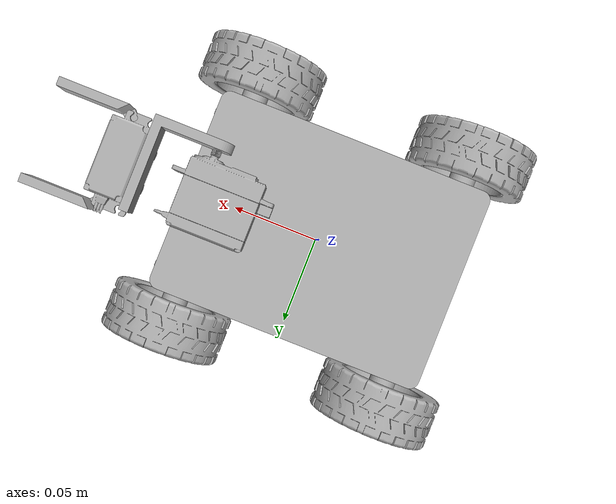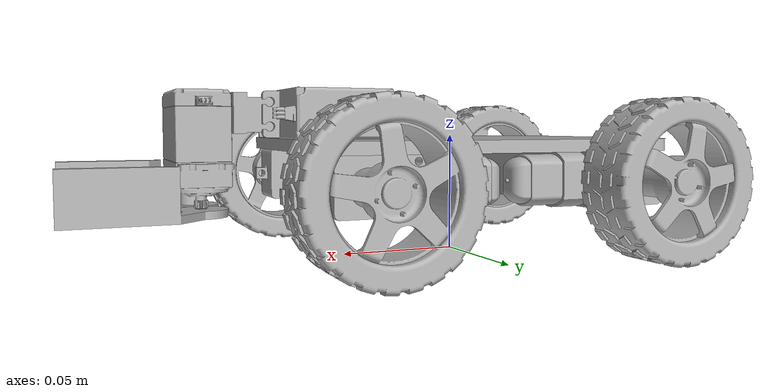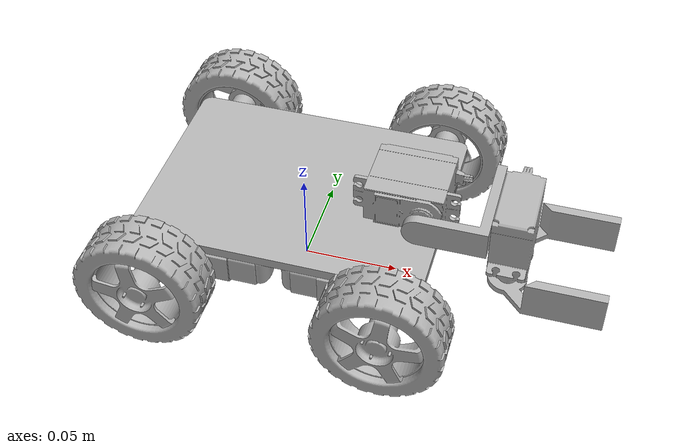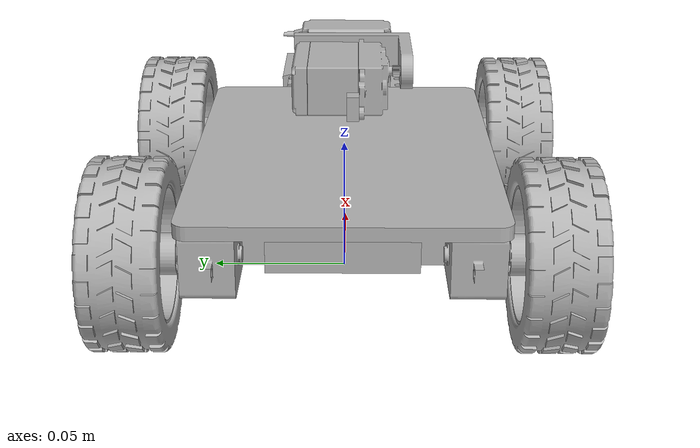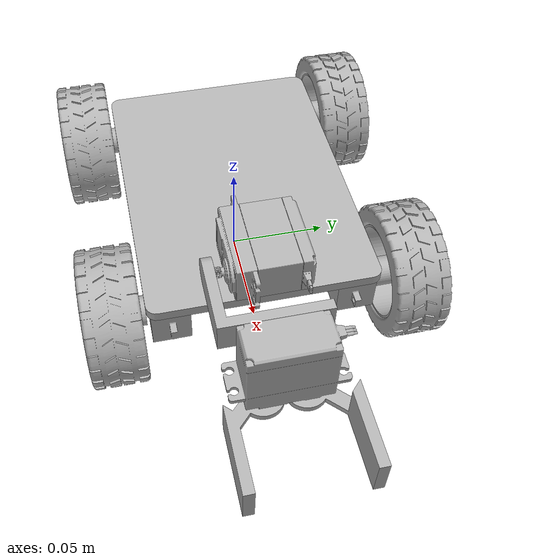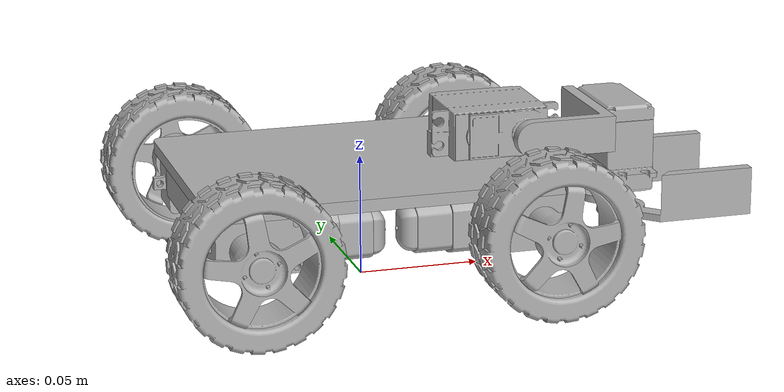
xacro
<?xml version="1.0" ?>
<robot name="irckt" xmlns:xacro="http://www.ros.org/wiki/xacro">

<xacro:include filename="$(find irckt_description)/urdf/materials.xacro" />
<xacro:include filename="$(find irckt_description)/urdf/irckt.trans" />
<xacro:include filename="$(find irckt_description)/urdf/irckt.gazebo" />

<link name="base_link">
  <inertial>
    <origin rpy="0 0 0" xyz="7.742307454656766e-05 9.440899465515515e-07 0.04248471740044428"/>
    <mass value="0.8966874377913377"/>
    <inertia ixx="0.000798" ixy="0.0" ixz="-1e-06" iyy="0.001656" iyz="0.0" izz="0.002362"/>
  </inertial>
  <visual>
    <origin rpy="0 0 0" xyz="0 0 0"/>
    <geometry>
      <mesh filename="package://irckt_description/meshes/base_link.stl" scale="0.001 0.001 0.001"/>
    </geometry>
    <material name="silver"/>
  </visual>
  <collision>
    <origin rpy="0 0 0" xyz="0 0 0"/>
    <geometry>
      <mesh filename="package://irckt_description/meshes/base_link.stl" scale="0.001 0.001 0.001"/>
    </geometry>
  </collision>
</link>

<link name="motor_gearbox_fr_1">
  <inertial>
    <origin rpy="0 0 0" xyz="0.013408875242231028 -0.009213108094018388 0.01125049043677288"/>
    <mass value="0.036388730782146946"/>
    <inertia ixx="4e-06" ixy="-0.0" ixz="0.0" iyy="1e-05" iyz="-0.0" izz="9e-06"/>
  </inertial>
  <visual>
    <origin rpy="0 0 0" xyz="-0.034984 0.03499 -0.021254"/>
    <geometry>
      <mesh filename="package://irckt_description/meshes/motor_gearbox_fr_1.stl" scale="0.001 0.001 0.001"/>
    </geometry>
    <material name="silver"/>
  </visual>
  <collision>
    <origin rpy="0 0 0" xyz="-0.034984 0.03499 -0.021254"/>
    <geometry>
      <mesh filename="package://irckt_description/meshes/motor_gearbox_fr_1.stl" scale="0.001 0.001 0.001"/>
    </geometry>
  </collision>
</link>

<link name="motor_fr_1">
  <inertial>
    <origin rpy="0 0 0" xyz="-0.0069939259120807805 -2.220446049250313e-16 4.904367727834313e-07"/>
    <mass value="0.033345486553475974"/>
    <inertia ixx="2e-06" ixy="0.0" ixz="0.0" iyy="2e-06" iyz="0.0" izz="1e-06"/>
  </inertial>
  <visual>
    <origin rpy="0 0 0" xyz="-0.022984 0.04421 -0.032504"/>
    <geometry>
      <mesh filename="package://irckt_description/meshes/motor_fr_1.stl" scale="0.001 0.001 0.001"/>
    </geometry>
    <material name="silver"/>
  </visual>
  <collision>
    <origin rpy="0 0 0" xyz="-0.022984 0.04421 -0.032504"/>
    <geometry>
      <mesh filename="package://irckt_description/meshes/motor_fr_1.stl" scale="0.001 0.001 0.001"/>
    </geometry>
  </collision>
</link>

<link name="motor_cap_fr_1">
  <inertial>
    <origin rpy="0 0 0" xyz="-0.0025818912734563923 5.692937052950708e-07 4.385274195162214e-08"/>
    <mass value="0.009229497133387199"/>
    <inertia ixx="0.0" ixy="0.0" ixz="-0.0" iyy="0.0" iyz="0.0" izz="0.0"/>
  </inertial>
  <visual>
    <origin rpy="0 0 0" xyz="-0.008984 0.04421 -0.032504"/>
    <geometry>
      <mesh filename="package://irckt_description/meshes/motor_cap_fr_1.stl" scale="0.001 0.001 0.001"/>
    </geometry>
    <material name="silver"/>
  </visual>
  <collision>
    <origin rpy="0 0 0" xyz="-0.008984 0.04421 -0.032504"/>
    <geometry>
      <mesh filename="package://irckt_description/meshes/motor_cap_fr_1.stl" scale="0.001 0.001 0.001"/>
    </geometry>
  </collision>
</link>

<link name="motor_tip_fr_1">
  <inertial>
    <origin rpy="0 0 0" xyz="-0.00044726959513325835 -3.122502256758253e-16 4.904369513350493e-07"/>
    <mass value="1.2182982002202539e-05"/>
    <inertia ixx="0.0" ixy="0.0" ixz="0.0" iyy="0.0" iyz="0.0" izz="0.0"/>
  </inertial>
  <visual>
    <origin rpy="0 0 0" xyz="-0.002984 0.04421 -0.032504"/>
    <geometry>
      <mesh filename="package://irckt_description/meshes/motor_tip_fr_1.stl" scale="0.001 0.001 0.001"/>
    </geometry>
    <material name="silver"/>
  </visual>
  <collision>
    <origin rpy="0 0 0" xyz="-0.002984 0.04421 -0.032504"/>
    <geometry>
      <mesh filename="package://irckt_description/meshes/motor_tip_fr_1.stl" scale="0.001 0.001 0.001"/>
    </geometry>
  </collision>
</link>

<link name="motor_shaft_fr_1">
  <inertial>
    <origin rpy="0 0 0" xyz="1.5345284029577577e-08 -0.01242112603739657 4.904363560404024e-07"/>
    <mass value="0.005108425148768522"/>
    <inertia ixx="0.0" ixy="-0.0" ixz="0.0" iyy="0.0" iyz="-0.0" izz="0.0"/>
  </inertial>
  <visual>
    <origin rpy="0 0 0" xyz="-0.059984 0.03499 -0.032504"/>
    <geometry>
      <mesh filename="package://irckt_description/meshes/motor_shaft_fr_1.stl" scale="0.001 0.001 0.001"/>
    </geometry>
    <material name="silver"/>
  </visual>
  <collision>
    <origin rpy="0 0 0" xyz="-0.059984 0.03499 -0.032504"/>
    <geometry>
      <mesh filename="package://irckt_description/meshes/motor_shaft_fr_1.stl" scale="0.001 0.001 0.001"/>
    </geometry>
  </collision>
</link>

<link name="wheel_rim_fr_1">
  <inertial>
    <origin rpy="0 0 0" xyz="-5.180015389613657e-07 -0.01723523233728609 1.5189048272259975e-06"/>
    <mass value="0.05760100700095268"/>
    <inertia ixx="1.1e-05" ixy="-0.0" ixz="0.0" iyy="1.5e-05" iyz="0.0" izz="1.1e-05"/>
  </inertial>
  <visual>
    <origin rpy="0 0 0" xyz="-0.059984 0.05495 -0.032504"/>
    <geometry>
      <mesh filename="package://irckt_description/meshes/wheel_rim_fr_1.stl" scale="0.001 0.001 0.001"/>
    </geometry>
    <material name="silver"/>
  </visual>
  <collision>
    <origin rpy="0 0 0" xyz="-0.059984 0.05495 -0.032504"/>
    <geometry>
      <mesh filename="package://irckt_description/meshes/wheel_rim_fr_1.stl" scale="0.001 0.001 0.001"/>
    </geometry>
  </collision>
</link>

<link name="wheel_tyre_fr_1">
  <inertial>
    <origin rpy="0 0 0" xyz="9.012012316955698e-09 -0.011497105646493512 4.780255148592594e-07"/>
    <mass value="0.19800736883970116"/>
    <inertia ixx="9.2e-05" ixy="0.0" ixz="-0.0" iyy="0.000156" iyz="0.0" izz="9.2e-05"/>
  </inertial>
  <visual>
    <origin rpy="0 0 0" xyz="-0.059984 0.05865 -0.032504"/>
    <geometry>
      <mesh filename="package://irckt_description/meshes/wheel_tyre_fr_1.stl" scale="0.001 0.001 0.001"/>
    </geometry>
    <material name="silver"/>
  </visual>
  <collision>
    <origin rpy="0 0 0" xyz="-0.059984 0.05865 -0.032504"/>
    <geometry>
      <mesh filename="package://irckt_description/meshes/wheel_tyre_fr_1.stl" scale="0.001 0.001 0.001"/>
    </geometry>
  </collision>
</link>

<link name="motor_gearbox_br_1">
  <inertial>
    <origin rpy="0 0 0" xyz="-0.013408844551836017 -0.009213108094018374 0.011250490436772603"/>
    <mass value="0.036388730782146925"/>
    <inertia ixx="4e-06" ixy="0.0" ixz="-0.0" iyy="1e-05" iyz="-0.0" izz="9e-06"/>
  </inertial>
  <visual>
    <origin rpy="0 0 0" xyz="0.035016 0.03499 -0.021254"/>
    <geometry>
      <mesh filename="package://irckt_description/meshes/motor_gearbox_br_1.stl" scale="0.001 0.001 0.001"/>
    </geometry>
    <material name="silver"/>
  </visual>
  <collision>
    <origin rpy="0 0 0" xyz="0.035016 0.03499 -0.021254"/>
    <geometry>
      <mesh filename="package://irckt_description/meshes/motor_gearbox_br_1.stl" scale="0.001 0.001 0.001"/>
    </geometry>
  </collision>
</link>

<link name="motor_br_1">
  <inertial>
    <origin rpy="0 0 0" xyz="0.006993956602475752 -3.122502256758253e-16 4.904367715968805e-07"/>
    <mass value="0.03334548655347591"/>
    <inertia ixx="2e-06" ixy="0.0" ixz="-0.0" iyy="2e-06" iyz="-0.0" izz="1e-06"/>
  </inertial>
  <visual>
    <origin rpy="0 0 0" xyz="0.023016 0.04421 -0.032504"/>
    <geometry>
      <mesh filename="package://irckt_description/meshes/motor_br_1.stl" scale="0.001 0.001 0.001"/>
    </geometry>
    <material name="silver"/>
  </visual>
  <collision>
    <origin rpy="0 0 0" xyz="0.023016 0.04421 -0.032504"/>
    <geometry>
      <mesh filename="package://irckt_description/meshes/motor_br_1.stl" scale="0.001 0.001 0.001"/>
    </geometry>
  </collision>
</link>

<link name="motor_cap_br_1">
  <inertial>
    <origin rpy="0 0 0" xyz="0.0025819232527109917 6.06989667806257e-07 2.1055439135275744e-08"/>
    <mass value="0.009229413055020544"/>
    <inertia ixx="0.0" ixy="-0.0" ixz="0.0" iyy="0.0" iyz="0.0" izz="0.0"/>
  </inertial>
  <visual>
    <origin rpy="0 0 0" xyz="0.009016 0.04421 -0.032504"/>
    <geometry>
      <mesh filename="package://irckt_description/meshes/motor_cap_br_1.stl" scale="0.001 0.001 0.001"/>
    </geometry>
    <material name="silver"/>
  </visual>
  <collision>
    <origin rpy="0 0 0" xyz="0.009016 0.04421 -0.032504"/>
    <geometry>
      <mesh filename="package://irckt_description/meshes/motor_cap_br_1.stl" scale="0.001 0.001 0.001"/>
    </geometry>
  </collision>
</link>

<link name="motor_tip_br_1">
  <inertial>
    <origin rpy="0 0 0" xyz="0.00044730028552824415 -3.608224830031759e-16 4.904367692515343e-07"/>
    <mass value="1.2182982002203211e-05"/>
    <inertia ixx="0.0" ixy="0.0" ixz="0.0" iyy="0.0" iyz="-0.0" izz="0.0"/>
  </inertial>
  <visual>
    <origin rpy="0 0 0" xyz="0.003016 0.04421 -0.032504"/>
    <geometry>
      <mesh filename="package://irckt_description/meshes/motor_tip_br_1.stl" scale="0.001 0.001 0.001"/>
    </geometry>
    <material name="silver"/>
  </visual>
  <collision>
    <origin rpy="0 0 0" xyz="0.003016 0.04421 -0.032504"/>
    <geometry>
      <mesh filename="package://irckt_description/meshes/motor_tip_br_1.stl" scale="0.001 0.001 0.001"/>
    </geometry>
  </collision>
</link>

<link name="motor_shaft_br_1">
  <inertial>
    <origin rpy="0 0 0" xyz="1.534511029355201e-08 -0.012421126037396674 4.904363562763248e-07"/>
    <mass value="0.00510842514876852"/>
    <inertia ixx="0.0" ixy="0.0" ixz="-0.0" iyy="0.0" iyz="-0.0" izz="0.0"/>
  </inertial>
  <visual>
    <origin rpy="0 0 0" xyz="0.060016 0.03499 -0.032504"/>
    <geometry>
      <mesh filename="package://irckt_description/meshes/motor_shaft_br_1.stl" scale="0.001 0.001 0.001"/>
    </geometry>
    <material name="silver"/>
  </visual>
  <collision>
    <origin rpy="0 0 0" xyz="0.060016 0.03499 -0.032504"/>
    <geometry>
      <mesh filename="package://irckt_description/meshes/motor_shaft_br_1.stl" scale="0.001 0.001 0.001"/>
    </geometry>
  </collision>
</link>

<link name="wheel_rim_br_1">
  <inertial>
    <origin rpy="0 0 0" xyz="5.431399148145277e-07 -0.017235229735062307 1.5172354682069233e-06"/>
    <mass value="0.05760099381812663"/>
    <inertia ixx="1.1e-05" ixy="0.0" ixz="-0.0" iyy="1.5e-05" iyz="0.0" izz="1.1e-05"/>
  </inertial>
  <visual>
    <origin rpy="0 0 0" xyz="0.060016 0.05495 -0.032504"/>
    <geometry>
      <mesh filename="package://irckt_description/meshes/wheel_rim_br_1.stl" scale="0.001 0.001 0.001"/>
    </geometry>
    <material name="silver"/>
  </visual>
  <collision>
    <origin rpy="0 0 0" xyz="0.060016 0.05495 -0.032504"/>
    <geometry>
      <mesh filename="package://irckt_description/meshes/wheel_rim_br_1.stl" scale="0.001 0.001 0.001"/>
    </geometry>
  </collision>
</link>

<link name="wheel_tyre_br_1">
  <inertial>
    <origin rpy="0 0 0" xyz="2.166498389716276e-08 -0.011497105494106825 4.780324033629157e-07"/>
    <mass value="0.19800720613745246"/>
    <inertia ixx="9.2e-05" ixy="-0.0" ixz="0.0" iyy="0.000156" iyz="0.0" izz="9.2e-05"/>
  </inertial>
  <visual>
    <origin rpy="0 0 0" xyz="0.060016 0.05865 -0.032504"/>
    <geometry>
      <mesh filename="package://irckt_description/meshes/wheel_tyre_br_1.stl" scale="0.001 0.001 0.001"/>
    </geometry>
    <material name="silver"/>
  </visual>
  <collision>
    <origin rpy="0 0 0" xyz="0.060016 0.05865 -0.032504"/>
    <geometry>
      <mesh filename="package://irckt_description/meshes/wheel_tyre_br_1.stl" scale="0.001 0.001 0.001"/>
    </geometry>
  </collision>
</link>

<link name="motor_gearbox_bl_1">
  <inertial>
    <origin rpy="0 0 0" xyz="-0.013408844551836087 0.009213108094018041 0.011250490436772894"/>
    <mass value="0.03638873078214621"/>
    <inertia ixx="4e-06" ixy="-0.0" ixz="-0.0" iyy="1e-05" iyz="0.0" izz="9e-06"/>
  </inertial>
  <visual>
    <origin rpy="0 0 0" xyz="0.035016 -0.03501 -0.021254"/>
    <geometry>
      <mesh filename="package://irckt_description/meshes/motor_gearbox_bl_1.stl" scale="0.001 0.001 0.001"/>
    </geometry>
    <material name="silver"/>
  </visual>
  <collision>
    <origin rpy="0 0 0" xyz="0.035016 -0.03501 -0.021254"/>
    <geometry>
      <mesh filename="package://irckt_description/meshes/motor_gearbox_bl_1.stl" scale="0.001 0.001 0.001"/>
    </geometry>
  </collision>
</link>

<link name="motor_bl_1">
  <inertial>
    <origin rpy="0 0 0" xyz="0.006993956602475749 -1.3877787807814457e-17 4.904367716801472e-07"/>
    <mass value="0.03334548655347597"/>
    <inertia ixx="2e-06" ixy="-0.0" ixz="0.0" iyy="2e-06" iyz="0.0" izz="1e-06"/>
  </inertial>
  <visual>
    <origin rpy="0 0 0" xyz="0.023016 -0.04423 -0.032504"/>
    <geometry>
      <mesh filename="package://irckt_description/meshes/motor_bl_1.stl" scale="0.001 0.001 0.001"/>
    </geometry>
    <material name="silver"/>
  </visual>
  <collision>
    <origin rpy="0 0 0" xyz="0.023016 -0.04423 -0.032504"/>
    <geometry>
      <mesh filename="package://irckt_description/meshes/motor_bl_1.stl" scale="0.001 0.001 0.001"/>
    </geometry>
  </collision>
</link>

<link name="motor_cap_bl_1">
  <inertial>
    <origin rpy="0 0 0" xyz="0.0025819219638513738 -5.692937056489544e-07 4.385274181978316e-08"/>
    <mass value="0.009229497133387197"/>
    <inertia ixx="0.0" ixy="0.0" ixz="0.0" iyy="0.0" iyz="-0.0" izz="0.0"/>
  </inertial>
  <visual>
    <origin rpy="0 0 0" xyz="0.009016 -0.04423 -0.032504"/>
    <geometry>
      <mesh filename="package://irckt_description/meshes/motor_cap_bl_1.stl" scale="0.001 0.001 0.001"/>
    </geometry>
    <material name="silver"/>
  </visual>
  <collision>
    <origin rpy="0 0 0" xyz="0.009016 -0.04423 -0.032504"/>
    <geometry>
      <mesh filename="package://irckt_description/meshes/motor_cap_bl_1.stl" scale="0.001 0.001 0.001"/>
    </geometry>
  </collision>
</link>

<link name="motor_tip_bl_1">
  <inertial>
    <origin rpy="0 0 0" xyz="0.00044730028552824154 1.3877787807814457e-17 4.904367693348011e-07"/>
    <mass value="1.2182982002203225e-05"/>
    <inertia ixx="0.0" ixy="-0.0" ixz="0.0" iyy="0.0" iyz="0.0" izz="0.0"/>
  </inertial>
  <visual>
    <origin rpy="0 0 0" xyz="0.003016 -0.04423 -0.032504"/>
    <geometry>
      <mesh filename="package://irckt_description/meshes/motor_tip_bl_1.stl" scale="0.001 0.001 0.001"/>
    </geometry>
    <material name="silver"/>
  </visual>
  <collision>
    <origin rpy="0 0 0" xyz="0.003016 -0.04423 -0.032504"/>
    <geometry>
      <mesh filename="package://irckt_description/meshes/motor_tip_bl_1.stl" scale="0.001 0.001 0.001"/>
    </geometry>
  </collision>
</link>

<link name="motor_shaft_bl_1">
  <inertial>
    <origin rpy="0 0 0" xyz="1.5345110855602417e-08 0.012421126037396306 4.904363559710134e-07"/>
    <mass value="0.00510842514876852"/>
    <inertia ixx="0.0" ixy="-0.0" ixz="-0.0" iyy="0.0" iyz="0.0" izz="0.0"/>
  </inertial>
  <visual>
    <origin rpy="0 0 0" xyz="0.060016 -0.03501 -0.032504"/>
    <geometry>
      <mesh filename="package://irckt_description/meshes/motor_shaft_bl_1.stl" scale="0.001 0.001 0.001"/>
    </geometry>
    <material name="silver"/>
  </visual>
  <collision>
    <origin rpy="0 0 0" xyz="0.060016 -0.03501 -0.032504"/>
    <geometry>
      <mesh filename="package://irckt_description/meshes/motor_shaft_bl_1.stl" scale="0.001 0.001 0.001"/>
    </geometry>
  </collision>
</link>

<link name="wheel_rim_bl_1">
  <inertial>
    <origin rpy="0 0 0" xyz="5.58495662654479e-07 0.017235221215434922 1.5285107425044853e-06"/>
    <mass value="0.057601062843890743"/>
    <inertia ixx="1.1e-05" ixy="-0.0" ixz="-0.0" iyy="1.5e-05" iyz="-0.0" izz="1.1e-05"/>
  </inertial>
  <visual>
    <origin rpy="0 0 0" xyz="0.060016 -0.05497 -0.032504"/>
    <geometry>
      <mesh filename="package://irckt_description/meshes/wheel_rim_bl_1.stl" scale="0.001 0.001 0.001"/>
    </geometry>
    <material name="silver"/>
  </visual>
  <collision>
    <origin rpy="0 0 0" xyz="0.060016 -0.05497 -0.032504"/>
    <geometry>
      <mesh filename="package://irckt_description/meshes/wheel_rim_bl_1.stl" scale="0.001 0.001 0.001"/>
    </geometry>
  </collision>
</link>

<link name="wheel_tyre_bl_1">
  <inertial>
    <origin rpy="0 0 0" xyz="1.8141209694177984e-08 0.011497105646392433 4.89053258334593e-07"/>
    <mass value="0.19800735518744308"/>
    <inertia ixx="9.2e-05" ixy="0.0" ixz="0.0" iyy="0.000156" iyz="-0.0" izz="9.2e-05"/>
  </inertial>
  <visual>
    <origin rpy="0 0 0" xyz="0.060016 -0.05867 -0.032504"/>
    <geometry>
      <mesh filename="package://irckt_description/meshes/wheel_tyre_bl_1.stl" scale="0.001 0.001 0.001"/>
    </geometry>
    <material name="silver"/>
  </visual>
  <collision>
    <origin rpy="0 0 0" xyz="0.060016 -0.05867 -0.032504"/>
    <geometry>
      <mesh filename="package://irckt_description/meshes/wheel_tyre_bl_1.stl" scale="0.001 0.001 0.001"/>
    </geometry>
  </collision>
</link>

<link name="motor_gearbox_fl_1">
  <inertial>
    <origin rpy="0 0 0" xyz="0.013408875242230923 0.009213108094018048 0.011250490436772908"/>
    <mass value="0.03638873078214622"/>
    <inertia ixx="4e-06" ixy="0.0" ixz="0.0" iyy="1e-05" iyz="0.0" izz="9e-06"/>
  </inertial>
  <visual>
    <origin rpy="0 0 0" xyz="-0.034984 -0.03501 -0.021254"/>
    <geometry>
      <mesh filename="package://irckt_description/meshes/motor_gearbox_fl_1.stl" scale="0.001 0.001 0.001"/>
    </geometry>
    <material name="silver"/>
  </visual>
  <collision>
    <origin rpy="0 0 0" xyz="-0.034984 -0.03501 -0.021254"/>
    <geometry>
      <mesh filename="package://irckt_description/meshes/motor_gearbox_fl_1.stl" scale="0.001 0.001 0.001"/>
    </geometry>
  </collision>
</link>

<link name="motor_fl_1">
  <inertial>
    <origin rpy="0 0 0" xyz="-0.006993925912080784 -7.632783294297951e-17 4.904367726377146e-07"/>
    <mass value="0.03334548655347598"/>
    <inertia ixx="2e-06" ixy="0.0" ixz="0.0" iyy="2e-06" iyz="0.0" izz="1e-06"/>
  </inertial>
  <visual>
    <origin rpy="0 0 0" xyz="-0.022984 -0.04423 -0.032504"/>
    <geometry>
      <mesh filename="package://irckt_description/meshes/motor_fl_1.stl" scale="0.001 0.001 0.001"/>
    </geometry>
    <material name="silver"/>
  </visual>
  <collision>
    <origin rpy="0 0 0" xyz="-0.022984 -0.04423 -0.032504"/>
    <geometry>
      <mesh filename="package://irckt_description/meshes/motor_fl_1.stl" scale="0.001 0.001 0.001"/>
    </geometry>
  </collision>
</link>

<link name="motor_cap_fl_1">
  <inertial>
    <origin rpy="0 0 0" xyz="-0.0025818925623160103 -6.069896681601405e-07 2.1055439211603577e-08"/>
    <mass value="0.009229413055020544"/>
    <inertia ixx="0.0" ixy="-0.0" ixz="-0.0" iyy="0.0" iyz="-0.0" izz="0.0"/>
  </inertial>
  <visual>
    <origin rpy="0 0 0" xyz="-0.008984 -0.04423 -0.032504"/>
    <geometry>
      <mesh filename="package://irckt_description/meshes/motor_cap_fl_1.stl" scale="0.001 0.001 0.001"/>
    </geometry>
    <material name="silver"/>
  </visual>
  <collision>
    <origin rpy="0 0 0" xyz="-0.008984 -0.04423 -0.032504"/>
    <geometry>
      <mesh filename="package://irckt_description/meshes/motor_cap_fl_1.stl" scale="0.001 0.001 0.001"/>
    </geometry>
  </collision>
</link>

<link name="motor_tip_fl_1">
  <inertial>
    <origin rpy="0 0 0" xyz="-0.0004472695951332601 -4.163336342344337e-17 4.904369511823936e-07"/>
    <mass value="1.2182982002202539e-05"/>
    <inertia ixx="0.0" ixy="-0.0" ixz="0.0" iyy="0.0" iyz="-0.0" izz="0.0"/>
  </inertial>
  <visual>
    <origin rpy="0 0 0" xyz="-0.002984 -0.04423 -0.032504"/>
    <geometry>
      <mesh filename="package://irckt_description/meshes/motor_tip_fl_1.stl" scale="0.001 0.001 0.001"/>
    </geometry>
    <material name="silver"/>
  </visual>
  <collision>
    <origin rpy="0 0 0" xyz="-0.002984 -0.04423 -0.032504"/>
    <geometry>
      <mesh filename="package://irckt_description/meshes/motor_tip_fl_1.stl" scale="0.001 0.001 0.001"/>
    </geometry>
  </collision>
</link>

<link name="motor_shaft_fl_1">
  <inertial>
    <origin rpy="0 0 0" xyz="1.5345284022638683e-08 0.012421126037396216 4.904363558808078e-07"/>
    <mass value="0.005108425148768522"/>
    <inertia ixx="0.0" ixy="0.0" ixz="0.0" iyy="0.0" iyz="0.0" izz="0.0"/>
  </inertial>
  <visual>
    <origin rpy="0 0 0" xyz="-0.059984 -0.03501 -0.032504"/>
    <geometry>
      <mesh filename="package://irckt_description/meshes/motor_shaft_fl_1.stl" scale="0.001 0.001 0.001"/>
    </geometry>
    <material name="silver"/>
  </visual>
  <collision>
    <origin rpy="0 0 0" xyz="-0.059984 -0.03501 -0.032504"/>
    <geometry>
      <mesh filename="package://irckt_description/meshes/motor_shaft_fl_1.stl" scale="0.001 0.001 0.001"/>
    </geometry>
  </collision>
</link>

<link name="wheel_rim_fl_1">
  <inertial>
    <origin rpy="0 0 0" xyz="-5.154830561987511e-07 0.017235253379376612 1.5308276021669398e-06"/>
    <mass value="0.05760056271807261"/>
    <inertia ixx="1.1e-05" ixy="0.0" ixz="0.0" iyy="1.5e-05" iyz="-0.0" izz="1.1e-05"/>
  </inertial>
  <visual>
    <origin rpy="0 0 0" xyz="-0.059984 -0.05497 -0.032504"/>
    <geometry>
      <mesh filename="package://irckt_description/meshes/wheel_rim_fl_1.stl" scale="0.001 0.001 0.001"/>
    </geometry>
    <material name="silver"/>
  </visual>
  <collision>
    <origin rpy="0 0 0" xyz="-0.059984 -0.05497 -0.032504"/>
    <geometry>
      <mesh filename="package://irckt_description/meshes/wheel_rim_fl_1.stl" scale="0.001 0.001 0.001"/>
    </geometry>
  </collision>
</link>

<link name="wheel_tyre_fl_1">
  <inertial>
    <origin rpy="0 0 0" xyz="1.2549497115099673e-08 0.011497105495240842 4.890534189699869e-07"/>
    <mass value="0.19800735756395393"/>
    <inertia ixx="9.2e-05" ixy="-0.0" ixz="-0.0" iyy="0.000156" iyz="-0.0" izz="9.2e-05"/>
  </inertial>
  <visual>
    <origin rpy="0 0 0" xyz="-0.059984 -0.05867 -0.032504"/>
    <geometry>
      <mesh filename="package://irckt_description/meshes/wheel_tyre_fl_1.stl" scale="0.001 0.001 0.001"/>
    </geometry>
    <material name="silver"/>
  </visual>
  <collision>
    <origin rpy="0 0 0" xyz="-0.059984 -0.05867 -0.032504"/>
    <geometry>
      <mesh filename="package://irckt_description/meshes/wheel_tyre_fl_1.stl" scale="0.001 0.001 0.001"/>
    </geometry>
  </collision>
</link>

<link name="dead_weight_1">
  <inertial>
    <origin rpy="0 0 0" xyz="0.010000015345197538 -1.1469164919002128e-16 -0.005499509563227492"/>
    <mass value="0.08635000000000023"/>
    <inertia ixx="1.9e-05" ixy="-0.0" ixz="-0.0" iyy="4e-06" iyz="0.0" izz="2.1e-05"/>
  </inertial>
  <visual>
    <origin rpy="0 0 0" xyz="0.075016 -1e-05 -0.043754"/>
    <geometry>
      <mesh filename="package://irckt_description/meshes/dead_weight_1.stl" scale="0.001 0.001 0.001"/>
    </geometry>
    <material name="silver"/>
  </visual>
  <collision>
    <origin rpy="0 0 0" xyz="0.075016 -1e-05 -0.043754"/>
    <geometry>
      <mesh filename="package://irckt_description/meshes/dead_weight_1.stl" scale="0.001 0.001 0.001"/>
    </geometry>
  </collision>
</link>

<link name="lift_servo_1">
  <inertial>
    <origin rpy="0 0 0" xyz="0.027167595742850655 0.00788813137728362 -4.864205094962104e-08"/>
    <mass value="0.03255290139063931"/>
    <inertia ixx="5e-06" ixy="0.0" ixz="0.0" iyy="6e-06" iyz="-0.0" izz="8e-06"/>
  </inertial>
  <visual>
    <origin rpy="0 0 0" xyz="-0.028484 0.005578 -0.058754"/>
    <geometry>
      <mesh filename="package://irckt_description/meshes/lift_servo_1.stl" scale="0.001 0.001 0.001"/>
    </geometry>
    <material name="silver"/>
  </visual>
  <collision>
    <origin rpy="0 0 0" xyz="-0.028484 0.005578 -0.058754"/>
    <geometry>
      <mesh filename="package://irckt_description/meshes/lift_servo_1.stl" scale="0.001 0.001 0.001"/>
    </geometry>
  </collision>
</link>

<link name="lift_link_1">
  <inertial>
    <origin rpy="0 0 0" xyz="0.023727499321322204 0.011149088854606767 4.909438067191019e-07"/>
    <mass value="0.006882014935206369"/>
    <inertia ixx="2e-06" ixy="-1e-06" ixz="-0.0" iyy="1e-06" iyz="-0.0" izz="3e-06"/>
  </inertial>
  <visual>
    <origin rpy="0 0 0" xyz="-0.065484 0.023078 -0.058754"/>
    <geometry>
      <mesh filename="package://irckt_description/meshes/lift_link_1.stl" scale="0.001 0.001 0.001"/>
    </geometry>
    <material name="silver"/>
  </visual>
  <collision>
    <origin rpy="0 0 0" xyz="-0.065484 0.023078 -0.058754"/>
    <geometry>
      <mesh filename="package://irckt_description/meshes/lift_link_1.stl" scale="0.001 0.001 0.001"/>
    </geometry>
  </collision>
</link>

<link name="gripper_servo_1">
  <inertial>
    <origin rpy="0 0 0" xyz="0.009999486404243751 8.181611108925372e-06 -0.018336714602036036"/>
    <mass value="0.03307185450478769"/>
    <inertia ixx="9e-06" ixy="0.0" ixz="-0.0" iyy="5e-06" iyz="-0.0" izz="6e-06"/>
  </inertial>
  <visual>
    <origin rpy="0 0 0" xyz="-0.099984 -1e-05 -0.066254"/>
    <geometry>
      <mesh filename="package://irckt_description/meshes/gripper_servo_1.stl" scale="0.001 0.001 0.001"/>
    </geometry>
    <material name="silver"/>
  </visual>
  <collision>
    <origin rpy="0 0 0" xyz="-0.099984 -1e-05 -0.066254"/>
    <geometry>
      <mesh filename="package://irckt_description/meshes/gripper_servo_1.stl" scale="0.001 0.001 0.001"/>
    </geometry>
  </collision>
</link>

<link name="finger_left_1">
  <inertial>
    <origin rpy="0 0 0" xyz="0.02407545811321196 0.013991086151714785 0.004939581363089994"/>
    <mass value="0.005246648290910586"/>
    <inertia ixx="0.0" ixy="-0.0" ixz="-0.0" iyy="2e-06" iyz="-0.0" izz="2e-06"/>
  </inertial>
  <visual>
    <origin rpy="0 0 0" xyz="-0.109984 -0.01001 -0.022879"/>
    <geometry>
      <mesh filename="package://irckt_description/meshes/finger_left_1.stl" scale="0.001 0.001 0.001"/>
    </geometry>
    <material name="silver"/>
  </visual>
  <collision>
    <origin rpy="0 0 0" xyz="-0.109984 -0.01001 -0.022879"/>
    <geometry>
      <mesh filename="package://irckt_description/meshes/finger_left_1.stl" scale="0.001 0.001 0.001"/>
    </geometry>
  </collision>
</link>

<link name="finger_right_1">
  <inertial>
    <origin rpy="0 0 0" xyz="0.02407545811321196 -0.013991084584887617 0.004939580385101037"/>
    <mass value="0.005246648290910586"/>
    <inertia ixx="0.0" ixy="0.0" ixz="-0.0" iyy="2e-06" iyz="0.0" izz="2e-06"/>
  </inertial>
  <visual>
    <origin rpy="0 0 0" xyz="-0.109984 0.00999 -0.022879"/>
    <geometry>
      <mesh filename="package://irckt_description/meshes/finger_right_1.stl" scale="0.001 0.001 0.001"/>
    </geometry>
    <material name="silver"/>
  </visual>
  <collision>
    <origin rpy="0 0 0" xyz="-0.109984 0.00999 -0.022879"/>
    <geometry>
      <mesh filename="package://irckt_description/meshes/finger_right_1.stl" scale="0.001 0.001 0.001"/>
    </geometry>
  </collision>
</link>

<joint name="Rigid1" type="fixed">
  <origin rpy="0 0 0" xyz="0.034984 -0.03499 0.021254"/>
  <parent link="base_link"/>
  <child link="motor_gearbox_fr_1"/>
</joint>

<joint name="Rigid2" type="fixed">
  <origin rpy="0 0 0" xyz="-0.012 -0.00922 0.01125"/>
  <parent link="motor_gearbox_fr_1"/>
  <child link="motor_fr_1"/>
</joint>

<joint name="Rigid3" type="fixed">
  <origin rpy="0 0 0" xyz="-0.014 0.0 0.0"/>
  <parent link="motor_fr_1"/>
  <child link="motor_cap_fr_1"/>
</joint>

<joint name="Rigid4" type="fixed">
  <origin rpy="0 0 0" xyz="-0.006 0.0 0.0"/>
  <parent link="motor_cap_fr_1"/>
  <child link="motor_tip_fr_1"/>
</joint>

<joint name="Rigid5" type="fixed">
  <origin rpy="0 0 0" xyz="0.025 0.0 0.01125"/>
  <parent link="motor_gearbox_fr_1"/>
  <child link="motor_shaft_fr_1"/>
</joint>

<joint name="motor_fr" type="continuous">
  <origin rpy="0 0 0" xyz="0.0 -0.01996 0.0"/>
  <parent link="motor_shaft_fr_1"/>
  <child link="wheel_rim_fr_1"/>
  <axis xyz="0.0 1.0 0.0"/>
</joint>

<joint name="Rigid7" type="fixed">
  <origin rpy="0 0 0" xyz="0.0 -0.0037 0.0"/>
  <parent link="wheel_rim_fr_1"/>
  <child link="wheel_tyre_fr_1"/>
</joint>

<joint name="Rigid8" type="fixed">
  <origin rpy="0 0 0" xyz="-0.035016 -0.03499 0.021254"/>
  <parent link="base_link"/>
  <child link="motor_gearbox_br_1"/>
</joint>

<joint name="Rigid9" type="fixed">
  <origin rpy="0 0 0" xyz="0.012 -0.00922 0.01125"/>
  <parent link="motor_gearbox_br_1"/>
  <child link="motor_br_1"/>
</joint>

<joint name="Rigid10" type="fixed">
  <origin rpy="0 0 0" xyz="0.014 0.0 0.0"/>
  <parent link="motor_br_1"/>
  <child link="motor_cap_br_1"/>
</joint>

<joint name="Rigid11" type="fixed">
  <origin rpy="0 0 0" xyz="0.006 0.0 0.0"/>
  <parent link="motor_cap_br_1"/>
  <child link="motor_tip_br_1"/>
</joint>

<joint name="Rigid12" type="fixed">
  <origin rpy="0 0 0" xyz="-0.025 0.0 0.01125"/>
  <parent link="motor_gearbox_br_1"/>
  <child link="motor_shaft_br_1"/>
</joint>

<joint name="motor_br" type="continuous">
  <origin rpy="0 0 0" xyz="0.0 -0.01996 0.0"/>
  <parent link="motor_shaft_br_1"/>
  <child link="wheel_rim_br_1"/>
  <axis xyz="0.0 1.0 -0.0"/>
</joint>

<joint name="Rigid14" type="fixed">
  <origin rpy="0 0 0" xyz="0.0 -0.0037 0.0"/>
  <parent link="wheel_rim_br_1"/>
  <child link="wheel_tyre_br_1"/>
</joint>

<joint name="Rigid15" type="fixed">
  <origin rpy="0 0 0" xyz="-0.035016 0.03501 0.021254"/>
  <parent link="base_link"/>
  <child link="motor_gearbox_bl_1"/>
</joint>

<joint name="Rigid16" type="fixed">
  <origin rpy="0 0 0" xyz="0.012 0.00922 0.01125"/>
  <parent link="motor_gearbox_bl_1"/>
  <child link="motor_bl_1"/>
</joint>

<joint name="Rigid17" type="fixed">
  <origin rpy="0 0 0" xyz="0.014 0.0 0.0"/>
  <parent link="motor_bl_1"/>
  <child link="motor_cap_bl_1"/>
</joint>

<joint name="Rigid18" type="fixed">
  <origin rpy="0 0 0" xyz="0.006 0.0 0.0"/>
  <parent link="motor_cap_bl_1"/>
  <child link="motor_tip_bl_1"/>
</joint>

<joint name="Rigid19" type="fixed">
  <origin rpy="0 0 0" xyz="-0.025 0.0 0.01125"/>
  <parent link="motor_gearbox_bl_1"/>
  <child link="motor_shaft_bl_1"/>
</joint>

<joint name="motor_bl" type="continuous">
  <origin rpy="0 0 0" xyz="0.0 0.01996 0.0"/>
  <parent link="motor_shaft_bl_1"/>
  <child link="wheel_rim_bl_1"/>
  <axis xyz="-0.0 1.0 -0.0"/>
</joint>

<joint name="Rigid21" type="fixed">
  <origin rpy="0 0 0" xyz="0.0 0.0037 0.0"/>
  <parent link="wheel_rim_bl_1"/>
  <child link="wheel_tyre_bl_1"/>
</joint>

<joint name="Rigid22" type="fixed">
  <origin rpy="0 0 0" xyz="0.034984 0.03501 0.021254"/>
  <parent link="base_link"/>
  <child link="motor_gearbox_fl_1"/>
</joint>

<joint name="Rigid23" type="fixed">
  <origin rpy="0 0 0" xyz="-0.012 0.00922 0.01125"/>
  <parent link="motor_gearbox_fl_1"/>
  <child link="motor_fl_1"/>
</joint>

<joint name="Rigid24" type="fixed">
  <origin rpy="0 0 0" xyz="-0.014 0.0 0.0"/>
  <parent link="motor_fl_1"/>
  <child link="motor_cap_fl_1"/>
</joint>

<joint name="Rigid25" type="fixed">
  <origin rpy="0 0 0" xyz="-0.006 0.0 0.0"/>
  <parent link="motor_cap_fl_1"/>
  <child link="motor_tip_fl_1"/>
</joint>

<joint name="Rigid26" type="fixed">
  <origin rpy="0 0 0" xyz="0.025 0.0 0.01125"/>
  <parent link="motor_gearbox_fl_1"/>
  <child link="motor_shaft_fl_1"/>
</joint>

<joint name="motor_fl" type="continuous">
  <origin rpy="0 0 0" xyz="0.0 0.01996 0.0"/>
  <parent link="motor_shaft_fl_1"/>
  <child link="wheel_rim_fl_1"/>
  <axis xyz="-0.0 1.0 0.0"/>
</joint>

<joint name="Rigid28" type="fixed">
  <origin rpy="0 0 0" xyz="0.0 0.0037 0.0"/>
  <parent link="wheel_rim_fl_1"/>
  <child link="wheel_tyre_fl_1"/>
</joint>

<joint name="Rigid29" type="fixed">
  <origin rpy="0 0 0" xyz="-0.075016 1e-05 0.043754"/>
  <parent link="base_link"/>
  <child link="dead_weight_1"/>
</joint>

<joint name="Rigid30" type="fixed">
  <origin rpy="0 0 0" xyz="0.028484 -0.005578 0.058754"/>
  <parent link="base_link"/>
  <child link="lift_servo_1"/>
</joint>

<joint name="Rigid32" type="fixed">
  <origin rpy="0 0 0" xyz="0.0345 0.023088 0.0075"/>
  <parent link="lift_link_1"/>
  <child link="gripper_servo_1"/>
</joint>

<joint name="motor_lift" type="fixed">
  <origin rpy="0 0 0" xyz="0.037 -0.0175 0.0"/>
  <parent link="lift_servo_1"/>
  <child link="lift_link_1"/>
</joint>

<joint name="motor_finger_left" type="revolute">
  <origin rpy="0 0 0" xyz="0.01 0.01 -0.043375"/>
  <parent link="gripper_servo_1"/>
  <child link="finger_left_1"/>
  <axis xyz="0.0 -0.0 1.0"/>
  <limit effort="100" lower="-0.436332" upper="1.48353" velocity="10"/>
  <dynamics friction="1" damping="1"/>
  <mimic joint="motor_finger_right" multiplier="1.0" offset="0.0"/>
</joint>

<joint name="motor_finger_right" type="revolute">
  <origin rpy="0 0 0" xyz="0.01 -0.01 -0.043375"/>
  <parent link="gripper_servo_1"/>
  <child link="finger_right_1"/>
  <axis xyz="-0.0 0.0 -1.0"/>
  <limit effort="100" lower="-0.436332" upper="1.48353" velocity="10"/>
  <dynamics friction="1" damping="1"/>
</joint>

<xacro:macro name="mimic_joint_plugin_gazebo" params="parent_joint mimic_joint has_pid:=false multiplier:=1.0 offset:=0 sensitiveness:=0.0 max_effort:=200.0 robot_namespace:='irckt'">
  <gazebo>
    <plugin name="${mimic_joint}_mimic_joint_plugin" filename="libroboticsgroup_gazebo_mimic_joint_plugin.so">
      <joint>${parent_joint}</joint>
      <mimicJoint>${mimic_joint}</mimicJoint>
      <xacro:if value="${has_pid}">
        <hasPID />
      </xacro:if>
      <multiplier>${multiplier}</multiplier>
      <offset>${offset}</offset>
      <sensitiveness>${sensitiveness}</sensitiveness>
      <maxEffort>${max_effort}</maxEffort>
      <xacro:unless value="${robot_namespace == ''}">
        <robotNamespace>($robot_namespace)</robotNamespace>
      </xacro:unless>
    </plugin>
  </gazebo>
</xacro:macro>

<xacro:mimic_joint_plugin_gazebo parent_joint="motor_finger_right" mimic_joint="motor_finger_left" has_pid="false" multiplier="1.0" max_effort="200.0" />

</robot>

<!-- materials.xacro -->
<robot name="irckt" xmlns:xacro="http://www.ros.org/wiki/xacro" >

<material name="silver">
  <color rgba="0.700 0.700 0.700 1.000"/>
</material>

</robot>

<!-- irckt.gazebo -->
<robot name="irckt" xmlns:xacro="http://www.ros.org/wiki/xacro" >

<xacro:property name="body_color" value="Gazebo/Silver" />
<xacro:property name="yellow_color" value="Gazebo/Yellow" />
<xacro:property name="black_color" value="Gazebo/DarkGrey" />
<xacro:property name="dark_grey_color" value="Gazebo/Grey" />

<gazebo>
  <plugin filename="libgazebo_ros_control.so" name="gazebo_ros_control">
    <robotNamespace>/irckt</robotNamespace>
    <robotSimType>gazebo_ros_control/DefaultRobotHWSim</robotSimType>
    <legacyModeNS>true</legacyModeNS>
  </plugin>
</gazebo>

<gazebo>
  <plugin name="skid_steer_drive_controller" filename="libgazebo_ros_skid_steer_drive.so">
    <updateRate>100.0</updateRate>
    <robotNamespace>/</robotNamespace>
    <leftFrontJoint>motor_fl</leftFrontJoint>
    <rightFrontJoint>motor_fr</rightFrontJoint>
    <leftRearJoint>motor_bl</leftRearJoint>
    <rightRearJoint>motor_br</rightRearJoint>
    <wheelSeparation>0.140820</wheelSeparation>
    <wheelDiameter>0.065</wheelDiameter>
    <robotBaseFrame>base_link</robotBaseFrame>
    <torque>5</torque>
    <topicName>/cmd_vel</topicName>
    <broadcastTF>false</broadcastTF>
  </plugin>
</gazebo>

<gazebo reference="base_link">
  <material>${body_color}</material>
  <mu1>0.2</mu1>
  <mu2>0.2</mu2>
  <selfCollide>false</selfCollide>
  <gravity>true</gravity>
</gazebo>

<gazebo reference="motor_gearbox_fr_1">
  <material>${yellow_color}</material>
  <mu1>0.2</mu1>
  <mu2>0.2</mu2>
  <selfCollide>false</selfCollide>
</gazebo>

<gazebo reference="motor_fr_1">
  <material>${dark_grey_color}</material>
  <mu1>0.2</mu1>
  <mu2>0.2</mu2>
  <selfCollide>false</selfCollide>
</gazebo>

<gazebo reference="motor_cap_fr_1">
  <material>${black_color}</material>
  <mu1>0.2</mu1>
  <mu2>0.2</mu2>
  <selfCollide>false</selfCollide>
</gazebo>

<gazebo reference="motor_tip_fr_1">
  <material>${body_color}</material>
  <mu1>0.2</mu1>
  <mu2>0.2</mu2>
  <selfCollide>false</selfCollide>
</gazebo>

<gazebo reference="motor_shaft_fr_1">
  <material>${body_color}</material>
  <mu1>0.2</mu1>
  <mu2>0.2</mu2>
  <selfCollide>false</selfCollide>
</gazebo>

<gazebo reference="wheel_rim_fr_1">
  <material>${yellow_color}</material>
  <mu1>0.2</mu1>
  <mu2>0.2</mu2>
  <selfCollide>false</selfCollide>
</gazebo>

<gazebo reference="wheel_tyre_fr_1">
  <material>${black_color}</material>
  <mu1>10</mu1>
  <mu2>10</mu2>
  <selfCollide>false</selfCollide>
</gazebo>

<gazebo reference="motor_gearbox_br_1">
  <material>${yellow_color}</material>
  <mu1>0.2</mu1>
  <mu2>0.2</mu2>
  <selfCollide>false</selfCollide>
</gazebo>

<gazebo reference="motor_br_1">
  <material>${dark_grey_color}</material>
  <mu1>0.2</mu1>
  <mu2>0.2</mu2>
  <selfCollide>false</selfCollide>
</gazebo>

<gazebo reference="motor_cap_br_1">
  <material>${black_color}</material>
  <mu1>0.2</mu1>
  <mu2>0.2</mu2>
  <selfCollide>false</selfCollide>
</gazebo>

<gazebo reference="motor_tip_br_1">
  <material>${body_color}</material>
  <mu1>0.2</mu1>
  <mu2>0.2</mu2>
  <selfCollide>false</selfCollide>
</gazebo>

<gazebo reference="motor_shaft_br_1">
  <material>${body_color}</material>
  <mu1>0.2</mu1>
  <mu2>0.2</mu2>
  <selfCollide>false</selfCollide>
</gazebo>

<gazebo reference="wheel_rim_br_1">
  <material>${yellow_color}</material>
  <mu1>0.2</mu1>
  <mu2>0.2</mu2>
  <selfCollide>false</selfCollide>
</gazebo>

<gazebo reference="wheel_tyre_br_1">
  <material>${black_color}</material>
  <mu1>10</mu1>
  <mu2>10</mu2>
  <selfCollide>false</selfCollide>
</gazebo>

<gazebo reference="motor_gearbox_bl_1">
  <material>${yellow_color}</material>
  <mu1>0.2</mu1>
  <mu2>0.2</mu2>
  <selfCollide>false</selfCollide>
</gazebo>

<gazebo reference="motor_bl_1">
  <material>${dark_grey_color}</material>
  <mu1>0.2</mu1>
  <mu2>0.2</mu2>
  <selfCollide>false</selfCollide>
</gazebo>

<gazebo reference="motor_cap_bl_1">
  <material>${black_color}</material>
  <mu1>0.2</mu1>
  <mu2>0.2</mu2>
  <selfCollide>false</selfCollide>
</gazebo>

<gazebo reference="motor_tip_bl_1">
  <material>${body_color}</material>
  <mu1>0.2</mu1>
  <mu2>0.2</mu2>
  <selfCollide>false</selfCollide>
</gazebo>

<gazebo reference="motor_shaft_bl_1">
  <material>${body_color}</material>
  <mu1>0.2</mu1>
  <mu2>0.2</mu2>
  <selfCollide>false</selfCollide>
</gazebo>

<gazebo reference="wheel_rim_bl_1">
  <material>${yellow_color}</material>
  <mu1>0.2</mu1>
  <mu2>0.2</mu2>
  <selfCollide>false</selfCollide>
</gazebo>

<gazebo reference="wheel_tyre_bl_1">
  <material>${black_color}</material>
  <mu1>10</mu1>
  <mu2>10</mu2>
  <selfCollide>false</selfCollide>
</gazebo>

<gazebo reference="motor_gearbox_fl_1">
  <material>${yellow_color}</material>
  <mu1>0.2</mu1>
  <mu2>0.2</mu2>
  <selfCollide>false</selfCollide>
</gazebo>

<gazebo reference="motor_fl_1">
  <material>${dark_grey_color}</material>
  <mu1>0.2</mu1>
  <mu2>0.2</mu2>
  <selfCollide>false</selfCollide>
</gazebo>

<gazebo reference="motor_cap_fl_1">
  <material>${black_color}</material>
  <mu1>0.2</mu1>
  <mu2>0.2</mu2>
  <selfCollide>false</selfCollide>
</gazebo>

<gazebo reference="motor_tip_fl_1">
  <material>${body_color}</material>
  <mu1>0.2</mu1>
  <mu2>0.2</mu2>
  <selfCollide>false</selfCollide>
</gazebo>

<gazebo reference="motor_shaft_fl_1">
  <material>${body_color}</material>
  <mu1>0.2</mu1>
  <mu2>0.2</mu2>
  <selfCollide>false</selfCollide>
</gazebo>

<gazebo reference="wheel_rim_fl_1">
  <material>${yellow_color}</material>
  <mu1>0.2</mu1>
  <mu2>0.2</mu2>
  <selfCollide>false</selfCollide>
</gazebo>

<gazebo reference="wheel_tyre_fl_1">
  <material>${black_color}</material>
  <mu1>10</mu1>
  <mu2>10</mu2>
  <selfCollide>false</selfCollide>
</gazebo>

<gazebo reference="dead_weight_1">
  <material>${black_color}</material>
  <mu1>0.2</mu1>
  <mu2>0.2</mu2>
  <selfCollide>false</selfCollide>
</gazebo>

<gazebo reference="lift_servo_1">
  <material>${black_color}</material>
  <mu1>0.2</mu1>
  <mu2>0.2</mu2>
  <selfCollide>false</selfCollide>
</gazebo>

<gazebo reference="lift_link_1">
  <material>${body_color}</material>
  <mu1>0.2</mu1>
  <mu2>0.2</mu2>
  <selfCollide>false</selfCollide>
</gazebo>

<gazebo reference="gripper_servo_1">
  <material>${black_color}</material>
  <mu1>0.2</mu1>
  <mu2>0.2</mu2>
  <selfCollide>false</selfCollide>
</gazebo>

<gazebo reference="finger_left_1">
  <material>${body_color}</material>
  <mu1>1000</mu1>
  <mu2>1000</mu2>
  <selfCollide>false</selfCollide>
</gazebo>

<gazebo reference="finger_right_1">
  <material>${body_color}</material>
  <mu1>1000</mu1>
  <mu2>1000</mu2>
  <selfCollide>false</selfCollide>
</gazebo>

<gazebo reference="motor_finger_left">
    <implicitSpringDamper>1</implicitSpringDamper>
</gazebo>

<gazebo reference="motor_finger_right">
    <implicitSpringDamper>1</implicitSpringDamper>
</gazebo>

</robot>
